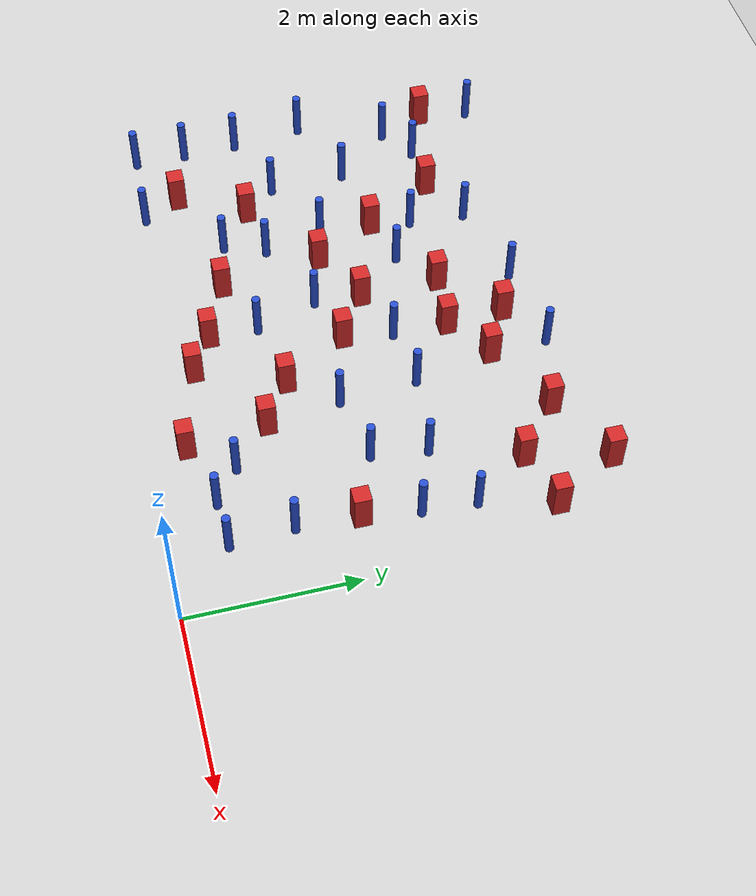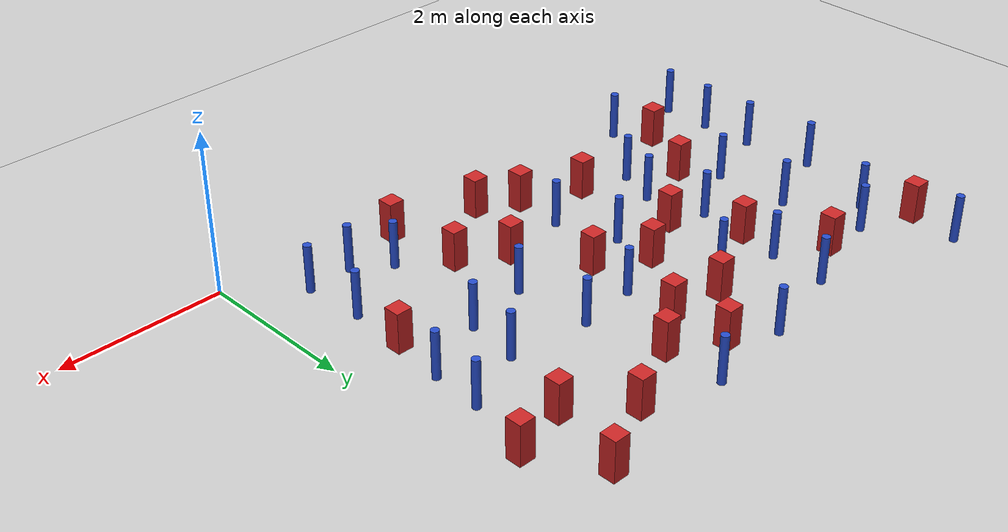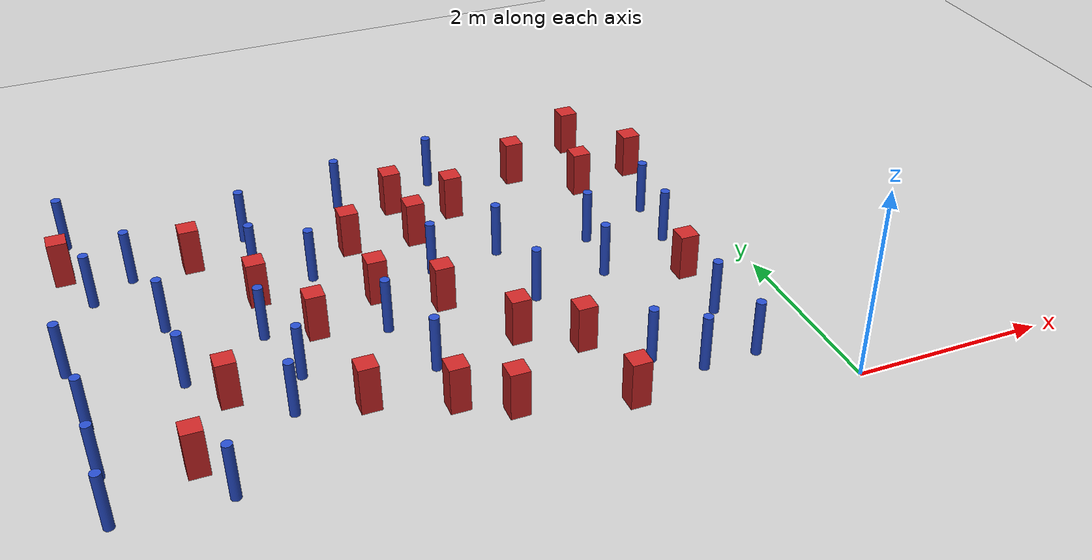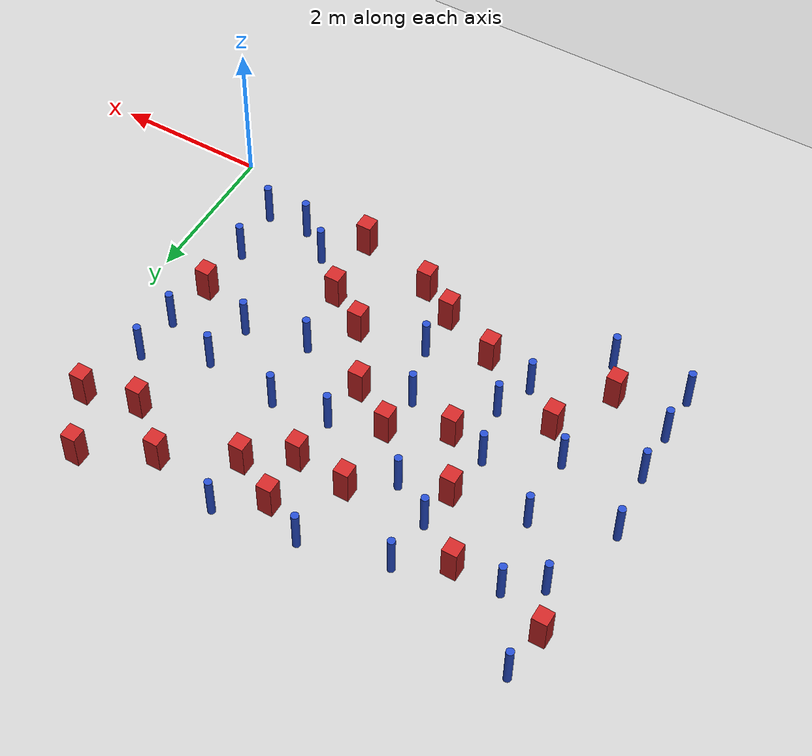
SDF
<sdf version="1.6">
 <world name="default">
  <model name="ground_plane">
   <static>1</static>
   <link name="link">
    <collision name="collision">
     <geometry><plane><normal>0 0 1</normal><size>100 100</size></plane></geometry>
     <surface><friction><ode><mu>100</mu><mu2>50</mu2></ode></friction></surface>
    </collision>
    <visual name="visual">
     <cast_shadows>0</cast_shadows>
     <geometry><plane><normal>0 0 1</normal><size>100 100</size></plane></geometry>
     <material>
      <ambient>1.0 1.0 1.0 1.0</ambient>
      <diffuse>0.8 0.8 0.8 1.0</diffuse>
      <specular>0.01 0.01 0.01 1.000000</specular>
     </material>
    </visual>
   </link>
  </model>
  <model name="square_post_obstacle4">
   <static>true</static>
   <pose>-2.11316547237 0.448848622311 8.22691968438e-08 7.2212513382e-06 -7.54495500217e-07 2.29674213826e-05</pose>
   <link name="link">
    <pose>0 0 0.25 0 -0 0</pose>
    <inertial>
     <mass>100</mass>
     <inertia>
      <ixx>0.166667</ixx>
      <ixy>0</ixy>
      <ixz>0</ixz>
      <iyy>0.166667</iyy>
      <iyz>0</iyz>
      <izz>0.166667</izz>
     </inertia>
    </inertial>
    <collision name="collision"><geometry><box><size>.2 .2 .5</size></box></geometry></collision>
    <visual name="visual">
     <geometry><box><size>.2 .2 .5</size></box></geometry>
     <material>
      <script><name>Gazebo/Red</name><uri>file://media/materials/scripts/gazebo.material</uri></script>
     </material>
    </visual>
   </link>
  </model>
  <model name="square_post_obstacle6">
   <static>true</static>
   <pose>-3.87069192573 3.87692242752 8.22691968438e-08 7.2212513382e-06 -7.54495500217e-07 2.29674213826e-05</pose>
   <link name="link">
    <pose>0 0 0.25 0 -0 0</pose>
    <inertial>
     <mass>100</mass>
     <inertia>
      <ixx>0.166667</ixx>
      <ixy>0</ixy>
      <ixz>0</ixz>
      <iyy>0.166667</iyy>
      <iyz>0</iyz>
      <izz>0.166667</izz>
     </inertia>
    </inertial>
    <collision name="collision"><geometry><box><size>.2 .2 .5</size></box></geometry></collision>
    <visual name="visual">
     <geometry><box><size>.2 .2 .5</size></box></geometry>
     <material>
      <script><name>Gazebo/Red</name><uri>file://media/materials/scripts/gazebo.material</uri></script>
     </material>
    </visual>
   </link>
  </model>
  <model name="square_post_obstacle10">
   <static>true</static>
   <pose>-0.852581200315 5.08488537747 8.22691968438e-08 7.2212513382e-06 -7.54495500217e-07 2.29674213826e-05</pose>
   <link name="link">
    <pose>0 0 0.25 0 -0 0</pose>
    <inertial>
     <mass>100</mass>
     <inertia>
      <ixx>0.166667</ixx>
      <ixy>0</ixy>
      <ixz>0</ixz>
      <iyy>0.166667</iyy>
      <iyz>0</iyz>
      <izz>0.166667</izz>
     </inertia>
    </inertial>
    <collision name="collision"><geometry><box><size>.2 .2 .5</size></box></geometry></collision>
    <visual name="visual">
     <geometry><box><size>.2 .2 .5</size></box></geometry>
     <material>
      <script><name>Gazebo/Red</name><uri>file://media/materials/scripts/gazebo.material</uri></script>
     </material>
    </visual>
   </link>
  </model>
  <model name="square_post_obstacle15">
   <static>true</static>
   <pose>-2.22045392741 1.4042794014 8.22691968438e-08 7.2212513382e-06 -7.54495500217e-07 2.29674213826e-05</pose>
   <link name="link">
    <pose>0 0 0.25 0 -0 0</pose>
    <inertial>
     <mass>100</mass>
     <inertia>
      <ixx>0.166667</ixx>
      <ixy>0</ixy>
      <ixz>0</ixz>
      <iyy>0.166667</iyy>
      <iyz>0</iyz>
      <izz>0.166667</izz>
     </inertia>
    </inertial>
    <collision name="collision"><geometry><box><size>.2 .2 .5</size></box></geometry></collision>
    <visual name="visual">
     <geometry><box><size>.2 .2 .5</size></box></geometry>
     <material>
      <script><name>Gazebo/Red</name><uri>file://media/materials/scripts/gazebo.material</uri></script>
     </material>
    </visual>
   </link>
  </model>
  <model name="square_post_obstacle16">
   <static>true</static>
   <pose>-2.76167531321 1.74624394198 8.22691968438e-08 7.2212513382e-06 -7.54495500217e-07 2.29674213826e-05</pose>
   <link name="link">
    <pose>0 0 0.25 0 -0 0</pose>
    <inertial>
     <mass>100</mass>
     <inertia>
      <ixx>0.166667</ixx>
      <ixy>0</ixy>
      <ixz>0</ixz>
      <iyy>0.166667</iyy>
      <iyz>0</iyz>
      <izz>0.166667</izz>
     </inertia>
    </inertial>
    <collision name="collision"><geometry><box><size>.2 .2 .5</size></box></geometry></collision>
    <visual name="visual">
     <geometry><box><size>.2 .2 .5</size></box></geometry>
     <material>
      <script><name>Gazebo/Red</name><uri>file://media/materials/scripts/gazebo.material</uri></script>
     </material>
    </visual>
   </link>
  </model>
  <model name="square_post_obstacle17">
   <static>true</static>
   <pose>-5.9862439751 1.03160733476 8.22691968438e-08 7.2212513382e-06 -7.54495500217e-07 2.29674213826e-05</pose>
   <link name="link">
    <pose>0 0 0.25 0 -0 0</pose>
    <inertial>
     <mass>100</mass>
     <inertia>
      <ixx>0.166667</ixx>
      <ixy>0</ixy>
      <ixz>0</ixz>
      <iyy>0.166667</iyy>
      <iyz>0</iyz>
      <izz>0.166667</izz>
     </inertia>
    </inertial>
    <collision name="collision"><geometry><box><size>.2 .2 .5</size></box></geometry></collision>
    <visual name="visual">
     <geometry><box><size>.2 .2 .5</size></box></geometry>
     <material>
      <script><name>Gazebo/Red</name><uri>file://media/materials/scripts/gazebo.material</uri></script>
     </material>
    </visual>
   </link>
  </model>
  <model name="pole_obstacle41">
   <static>true</static>
   <pose>-6.80397905321 1.93178878312 2.88873142074e-08 -9.90536689445e-09 4.60219948999e-07 -1.20965994956e-07</pose>
   <link name="link">
    <pose>0 0 0.3 0 -0 0</pose>
    <inertial>
     <mass>1</mass>
     <inertia><ixx>0.145833</ixx><ixy>0</ixy><ixz>0</ixz><iyy>0.145833</iyy><iyz>0</iyz><izz>0.125</izz></inertia>
    </inertial>
    <collision name="collision">
     <geometry><cylinder><radius>0.05</radius><length>.6</length></cylinder></geometry>
    </collision>
    <visual name="visual">
     <geometry><cylinder><radius>0.05</radius><length>.6</length></cylinder></geometry>
     <material>
      <script><name>Gazebo/Blue</name><uri>file://media/materials/scripts/gazebo.material</uri></script>
     </material>
    </visual>
   </link>
  </model>
  <model name="pole_obstacle43">
   <static>true</static>
   <pose>-2.35317651669 2.29466761932 2.88873142074e-08 -9.90536690232e-09 4.6021994898e-07 -1.20965994968e-07</pose>
   <link name="link">
    <pose>0 0 0.3 0 -0 0</pose>
    <inertial>
     <mass>1</mass>
     <inertia><ixx>0.145833</ixx><ixy>0</ixy><ixz>0</ixz><iyy>0.145833</iyy><iyz>0</iyz><izz>0.125</izz></inertia>
    </inertial>
    <collision name="collision">
     <geometry><cylinder><radius>0.05</radius><length>.6</length></cylinder></geometry>
    </collision>
    <visual name="visual">
     <geometry><cylinder><radius>0.05</radius><length>.6</length></cylinder></geometry>
     <material>
      <script><name>Gazebo/Blue</name><uri>file://media/materials/scripts/gazebo.material</uri></script>
     </material>
    </visual>
   </link>
  </model>
  <model name="pole_obstacle46">
   <static>true</static>
   <pose>-3.76597428438 4.78075780104 2.88873142074e-08 -9.90536689859e-09 4.60219948989e-07 -1.20965994961e-07</pose>
   <link name="link">
    <pose>0 0 0.3 0 -0 0</pose>
    <inertial>
     <mass>1</mass>
     <inertia><ixx>0.145833</ixx><ixy>0</ixy><ixz>0</ixz><iyy>0.145833</iyy><iyz>0</iyz><izz>0.125</izz></inertia>
    </inertial>
    <collision name="collision">
     <geometry><cylinder><radius>0.05</radius><length>.6</length></cylinder></geometry>
    </collision>
    <visual name="visual">
     <geometry><cylinder><radius>0.05</radius><length>.6</length></cylinder></geometry>
     <material>
      <script><name>Gazebo/Blue</name><uri>file://media/materials/scripts/gazebo.material</uri></script>
     </material>
    </visual>
   </link>
  </model>
  <model name="square_post_obstacle37">
   <static>true</static>
   <pose>-5.55271702895 1.84502381901 8.22691968438e-08 7.2212513382e-06 -7.54495500217e-07 2.29674213826e-05</pose>
   <link name="link">
    <pose>0 0 0.25 0 -0 0</pose>
    <inertial>
     <mass>100</mass>
     <inertia>
      <ixx>0.166667</ixx>
      <ixy>0</ixy>
      <ixz>0</ixz>
      <iyy>0.166667</iyy>
      <iyz>0</iyz>
      <izz>0.166667</izz>
     </inertia>
    </inertial>
    <collision name="collision"><geometry><box><size>.2 .2 .5</size></box></geometry></collision>
    <visual name="visual">
     <geometry><box><size>.2 .2 .5</size></box></geometry>
     <material>
      <script><name>Gazebo/Red</name><uri>file://media/materials/scripts/gazebo.material</uri></script>
     </material>
    </visual>
   </link>
  </model>
  <model name="pole_obstacle48">
   <static>true</static>
   <pose>-3.64993257593 1.59361665592 2.88873142074e-08 -9.90536689395e-09 4.60219949e-07 -1.20965994953e-07</pose>
   <link name="link">
    <pose>0 0 0.3 0 -0 0</pose>
    <inertial>
     <mass>1</mass>
     <inertia><ixx>0.145833</ixx><ixy>0</ixy><ixz>0</ixz><iyy>0.145833</iyy><iyz>0</iyz><izz>0.125</izz></inertia>
    </inertial>
    <collision name="collision">
     <geometry><cylinder><radius>0.05</radius><length>.6</length></cylinder></geometry>
    </collision>
    <visual name="visual">
     <geometry><cylinder><radius>0.05</radius><length>.6</length></cylinder></geometry>
     <material>
      <script><name>Gazebo/Blue</name><uri>file://media/materials/scripts/gazebo.material</uri></script>
     </material>
    </visual>
   </link>
  </model>
  <model name="pole_obstacle49">
   <static>true</static>
   <pose>-6.67984582859 5.06452650886 2.88873142074e-08 -9.90536690842e-09 4.60219948965e-07 -1.20965994976e-07</pose>
   <link name="link">
    <pose>0 0 0.3 0 -0 0</pose>
    <inertial>
     <mass>1</mass>
     <inertia><ixx>0.145833</ixx><ixy>0</ixy><ixz>0</ixz><iyy>0.145833</iyy><iyz>0</iyz><izz>0.125</izz></inertia>
    </inertial>
    <collision name="collision">
     <geometry><cylinder><radius>0.05</radius><length>.6</length></cylinder></geometry>
    </collision>
    <visual name="visual">
     <geometry><cylinder><radius>0.05</radius><length>.6</length></cylinder></geometry>
     <material>
      <script><name>Gazebo/Blue</name><uri>file://media/materials/scripts/gazebo.material</uri></script>
     </material>
    </visual>
   </link>
  </model>
  <model name="pole_obstacle55">
   <static>true</static>
   <pose>-0.789212763674 1.41778082368 2.88873142074e-08 -9.90536689855e-09 4.60219948989e-07 -1.20965994962e-07</pose>
   <link name="link">
    <pose>0 0 0.3 0 -0 0</pose>
    <inertial>
     <mass>1</mass>
     <inertia><ixx>0.145833</ixx><ixy>0</ixy><ixz>0</ixz><iyy>0.145833</iyy><iyz>0</iyz><izz>0.125</izz></inertia>
    </inertial>
    <collision name="collision">
     <geometry><cylinder><radius>0.05</radius><length>.6</length></cylinder></geometry>
    </collision>
    <visual name="visual">
     <geometry><cylinder><radius>0.05</radius><length>.6</length></cylinder></geometry>
     <material>
      <script><name>Gazebo/Blue</name><uri>file://media/materials/scripts/gazebo.material</uri></script>
     </material>
    </visual>
   </link>
  </model>
  <model name="square_post_obstacle42">
   <static>true</static>
   <pose>-3.64605832302 1.00050177751 8.22691968438e-08 7.2212513382e-06 -7.54495500217e-07 2.29674213826e-05</pose>
   <link name="link">
    <pose>0 0 0.25 0 -0 0</pose>
    <inertial>
     <mass>100</mass>
     <inertia>
      <ixx>0.166667</ixx>
      <ixy>0</ixy>
      <ixz>0</ixz>
      <iyy>0.166667</iyy>
      <iyz>0</iyz>
      <izz>0.166667</izz>
     </inertia>
    </inertial>
    <collision name="collision"><geometry><box><size>.2 .2 .5</size></box></geometry></collision>
    <visual name="visual">
     <geometry><box><size>.2 .2 .5</size></box></geometry>
     <material>
      <script><name>Gazebo/Red</name><uri>file://media/materials/scripts/gazebo.material</uri></script>
     </material>
    </visual>
   </link>
  </model>
  <model name="pole_obstacle57">
   <static>true</static>
   <pose>-5.04456803269 1.44808063659 2.88873142074e-08 -9.90536689445e-09 4.60219948999e-07 -1.20965994956e-07</pose>
   <link name="link">
    <pose>0 0 0.3 0 -0 0</pose>
    <inertial>
     <mass>1</mass>
     <inertia><ixx>0.145833</ixx><ixy>0</ixy><ixz>0</ixz><iyy>0.145833</iyy><iyz>0</iyz><izz>0.125</izz></inertia>
    </inertial>
    <collision name="collision">
     <geometry><cylinder><radius>0.05</radius><length>.6</length></cylinder></geometry>
    </collision>
    <visual name="visual">
     <geometry><cylinder><radius>0.05</radius><length>.6</length></cylinder></geometry>
     <material>
      <script><name>Gazebo/Blue</name><uri>file://media/materials/scripts/gazebo.material</uri></script>
     </material>
    </visual>
   </link>
  </model>
  <model name="pole_obstacle62">
   <static>true</static>
   <pose>-4.85865674585 1.94976239915 2.88873142074e-08 -9.90536689445e-09 4.60219948999e-07 -1.20965994956e-07</pose>
   <link name="link">
    <pose>0 0 0.3 0 -0 0</pose>
    <inertial>
     <mass>1</mass>
     <inertia><ixx>0.145833</ixx><ixy>0</ixy><ixz>0</ixz><iyy>0.145833</iyy><iyz>0</iyz><izz>0.125</izz></inertia>
    </inertial>
    <collision name="collision">
     <geometry><cylinder><radius>0.05</radius><length>.6</length></cylinder></geometry>
    </collision>
    <visual name="visual">
     <geometry><cylinder><radius>0.05</radius><length>.6</length></cylinder></geometry>
     <material>
      <script><name>Gazebo/Blue</name><uri>file://media/materials/scripts/gazebo.material</uri></script>
     </material>
    </visual>
   </link>
  </model>
  <model name="square_post_obstacle57">
   <static>true</static>
   <pose>-0.396404129741 4.30557157454 8.22691968438e-08 7.22125133819e-06 -7.54495500217e-07 2.29674213826e-05</pose>
   <link name="link">
    <pose>0 0 0.25 0 -0 0</pose>
    <inertial>
     <mass>100</mass>
     <inertia>
      <ixx>0.166667</ixx>
      <ixy>0</ixy>
      <ixz>0</ixz>
      <iyy>0.166667</iyy>
      <iyz>0</iyz>
      <izz>0.166667</izz>
     </inertia>
    </inertial>
    <collision name="collision"><geometry><box><size>.2 .2 .5</size></box></geometry></collision>
    <visual name="visual">
     <geometry><box><size>.2 .2 .5</size></box></geometry>
     <material>
      <script><name>Gazebo/Red</name><uri>file://media/materials/scripts/gazebo.material</uri></script>
     </material>
    </visual>
   </link>
  </model>
  <model name="pole_obstacle69">
   <static>true</static>
   <pose>-5.92771068466 3.17629808657 2.88873142074e-08 -9.90536690245e-09 4.6021994898e-07 -1.20965994966e-07</pose>
   <link name="link">
    <pose>0 0 0.3 0 -0 0</pose>
    <inertial>
     <mass>1</mass>
     <inertia><ixx>0.145833</ixx><ixy>0</ixy><ixz>0</ixz><iyy>0.145833</iyy><iyz>0</iyz><izz>0.125</izz></inertia>
    </inertial>
    <collision name="collision">
     <geometry><cylinder><radius>0.05</radius><length>.6</length></cylinder></geometry>
    </collision>
    <visual name="visual">
     <geometry><cylinder><radius>0.05</radius><length>.6</length></cylinder></geometry>
     <material>
      <script><name>Gazebo/Blue</name><uri>file://media/materials/scripts/gazebo.material</uri></script>
     </material>
    </visual>
   </link>
  </model>
  <model name="square_post_obstacle61">
   <static>true</static>
   <pose>-2.61877729427 4.18500369244 8.22691968438e-08 7.2212513382e-06 -7.54495500217e-07 2.29674213826e-05</pose>
   <link name="link">
    <pose>0 0 0.25 0 -0 0</pose>
    <inertial>
     <mass>100</mass>
     <inertia>
      <ixx>0.166667</ixx>
      <ixy>0</ixy>
      <ixz>0</ixz>
      <iyy>0.166667</iyy>
      <iyz>0</iyz>
      <izz>0.166667</izz>
     </inertia>
    </inertial>
    <collision name="collision"><geometry><box><size>.2 .2 .5</size></box></geometry></collision>
    <visual name="visual">
     <geometry><box><size>.2 .2 .5</size></box></geometry>
     <material>
      <script><name>Gazebo/Red</name><uri>file://media/materials/scripts/gazebo.material</uri></script>
     </material>
    </visual>
   </link>
  </model>
  <model name="pole_obstacle72">
   <static>true</static>
   <pose>-6.53164987024 3.87169850546 2.88873142074e-08 -9.90536690245e-09 4.6021994898e-07 -1.20965994966e-07</pose>
   <link name="link">
    <pose>0 0 0.3 0 -0 0</pose>
    <inertial>
     <mass>1</mass>
     <inertia><ixx>0.145833</ixx><ixy>0</ixy><ixz>0</ixz><iyy>0.145833</iyy><iyz>0</iyz><izz>0.125</izz></inertia>
    </inertial>
    <collision name="collision">
     <geometry><cylinder><radius>0.05</radius><length>.6</length></cylinder></geometry>
    </collision>
    <visual name="visual">
     <geometry><cylinder><radius>0.05</radius><length>.6</length></cylinder></geometry>
     <material>
      <script><name>Gazebo/Blue</name><uri>file://media/materials/scripts/gazebo.material</uri></script>
     </material>
    </visual>
   </link>
  </model>
  <model name="pole_obstacle76">
   <static>true</static>
   <pose>-0.629831373037 3.4519672268 2.88873142074e-08 -9.90536689636e-09 4.60219948994e-07 -1.20965994958e-07</pose>
   <link name="link">
    <pose>0 0 0.3 0 -0 0</pose>
    <inertial>
     <mass>1</mass>
     <inertia><ixx>0.145833</ixx><ixy>0</ixy><ixz>0</ixz><iyy>0.145833</iyy><iyz>0</iyz><izz>0.125</izz></inertia>
    </inertial>
    <collision name="collision">
     <geometry><cylinder><radius>0.05</radius><length>.6</length></cylinder></geometry>
    </collision>
    <visual name="visual">
     <geometry><cylinder><radius>0.05</radius><length>.6</length></cylinder></geometry>
     <material>
      <script><name>Gazebo/Blue</name><uri>file://media/materials/scripts/gazebo.material</uri></script>
     </material>
    </visual>
   </link>
  </model>
  <model name="pole_obstacle77">
   <static>true</static>
   <pose>-2.43531932804 3.23425886564 2.88873142074e-08 -9.90536690232e-09 4.6021994898e-07 -1.20965994968e-07</pose>
   <link name="link">
    <pose>0 0 0.3 0 -0 0</pose>
    <inertial>
     <mass>1</mass>
     <inertia><ixx>0.145833</ixx><ixy>0</ixy><ixz>0</ixz><iyy>0.145833</iyy><iyz>0</iyz><izz>0.125</izz></inertia>
    </inertial>
    <collision name="collision">
     <geometry><cylinder><radius>0.05</radius><length>.6</length></cylinder></geometry>
    </collision>
    <visual name="visual">
     <geometry><cylinder><radius>0.05</radius><length>.6</length></cylinder></geometry>
     <material>
      <script><name>Gazebo/Blue</name><uri>file://media/materials/scripts/gazebo.material</uri></script>
     </material>
    </visual>
   </link>
  </model>
  <model name="pole_obstacle79">
   <static>true</static>
   <pose>-1.52706227829 2.44863268867 2.88873142074e-08 -9.90536689791e-09 4.6021994899e-07 -1.20965994959e-07</pose>
   <link name="link">
    <pose>0 0 0.3 0 -0 0</pose>
    <inertial>
     <mass>1</mass>
     <inertia><ixx>0.145833</ixx><ixy>0</ixy><ixz>0</ixz><iyy>0.145833</iyy><iyz>0</iyz><izz>0.125</izz></inertia>
    </inertial>
    <collision name="collision">
     <geometry><cylinder><radius>0.05</radius><length>.6</length></cylinder></geometry>
    </collision>
    <visual name="visual">
     <geometry><cylinder><radius>0.05</radius><length>.6</length></cylinder></geometry>
     <material>
      <script><name>Gazebo/Blue</name><uri>file://media/materials/scripts/gazebo.material</uri></script>
     </material>
    </visual>
   </link>
  </model>
  <model name="square_post_obstacle71">
   <static>true</static>
   <pose>-1.09750510211 4.12638105105 8.22691968438e-08 7.2212513382e-06 -7.54495500217e-07 2.29674213826e-05</pose>
   <link name="link">
    <pose>0 0 0.25 0 -0 0</pose>
    <inertial>
     <mass>100</mass>
     <inertia>
      <ixx>0.166667</ixx>
      <ixy>0</ixy>
      <ixz>0</ixz>
      <iyy>0.166667</iyy>
      <iyz>0</iyz>
      <izz>0.166667</izz>
     </inertia>
    </inertial>
    <collision name="collision"><geometry><box><size>.2 .2 .5</size></box></geometry></collision>
    <visual name="visual">
     <geometry><box><size>.2 .2 .5</size></box></geometry>
     <material>
      <script><name>Gazebo/Red</name><uri>file://media/materials/scripts/gazebo.material</uri></script>
     </material>
    </visual>
   </link>
  </model>
  <model name="pole_obstacle84">
   <static>true</static>
   <pose>-4.3691163398 3.49602327641 2.88873142074e-08 -9.90536690245e-09 4.6021994898e-07 -1.20965994966e-07</pose>
   <link name="link">
    <pose>0 0 0.3 0 -0 0</pose>
    <inertial>
     <mass>1</mass>
     <inertia><ixx>0.145833</ixx><ixy>0</ixy><ixz>0</ixz><iyy>0.145833</iyy><iyz>0</iyz><izz>0.125</izz></inertia>
    </inertial>
    <collision name="collision">
     <geometry><cylinder><radius>0.05</radius><length>.6</length></cylinder></geometry>
    </collision>
    <visual name="visual">
     <geometry><cylinder><radius>0.05</radius><length>.6</length></cylinder></geometry>
     <material>
      <script><name>Gazebo/Blue</name><uri>file://media/materials/scripts/gazebo.material</uri></script>
     </material>
    </visual>
   </link>
  </model>
  <model name="pole_obstacle86">
   <static>true</static>
   <pose>-1.71890436945 0.944685825145 2.88873142074e-08 -9.90536689692e-09 4.60219948993e-07 -1.20965994958e-07</pose>
   <link name="link">
    <pose>0 0 0.3 0 -0 0</pose>
    <inertial>
     <mass>1</mass>
     <inertia><ixx>0.145833</ixx><ixy>0</ixy><ixz>0</ixz><iyy>0.145833</iyy><iyz>0</iyz><izz>0.125</izz></inertia>
    </inertial>
    <collision name="collision">
     <geometry><cylinder><radius>0.05</radius><length>.6</length></cylinder></geometry>
    </collision>
    <visual name="visual">
     <geometry><cylinder><radius>0.05</radius><length>.6</length></cylinder></geometry>
     <material>
      <script><name>Gazebo/Blue</name><uri>file://media/materials/scripts/gazebo.material</uri></script>
     </material>
    </visual>
   </link>
  </model>
  <model name="pole_obstacle94">
   <static>true</static>
   <pose>-5.05500899514 2.68428086867 2.88873142074e-08 -9.90536690245e-09 4.6021994898e-07 -1.20965994966e-07</pose>
   <link name="link">
    <pose>0 0 0.3 0 -0 0</pose>
    <inertial>
     <mass>1</mass>
     <inertia><ixx>0.145833</ixx><ixy>0</ixy><ixz>0</ixz><iyy>0.145833</iyy><iyz>0</iyz><izz>0.125</izz></inertia>
    </inertial>
    <collision name="collision">
     <geometry><cylinder><radius>0.05</radius><length>.6</length></cylinder></geometry>
    </collision>
    <visual name="visual">
     <geometry><cylinder><radius>0.05</radius><length>.6</length></cylinder></geometry>
     <material>
      <script><name>Gazebo/Blue</name><uri>file://media/materials/scripts/gazebo.material</uri></script>
     </material>
    </visual>
   </link>
  </model>
  <model name="pole_obstacle95">
   <static>true</static>
   <pose>-4.91013046387 3.81869325288 2.88873142074e-08 -9.90536690245e-09 4.6021994898e-07 -1.20965994966e-07</pose>
   <link name="link">
    <pose>0 0 0.3 0 -0 0</pose>
    <inertial>
     <mass>1</mass>
     <inertia><ixx>0.145833</ixx><ixy>0</ixy><ixz>0</ixz><iyy>0.145833</iyy><iyz>0</iyz><izz>0.125</izz></inertia>
    </inertial>
    <collision name="collision">
     <geometry><cylinder><radius>0.05</radius><length>.6</length></cylinder></geometry>
    </collision>
    <visual name="visual">
     <geometry><cylinder><radius>0.05</radius><length>.6</length></cylinder></geometry>
     <material>
      <script><name>Gazebo/Blue</name><uri>file://media/materials/scripts/gazebo.material</uri></script>
     </material>
    </visual>
   </link>
  </model>
  <model name="square_post_obstacle90">
   <static>true</static>
   <pose>-3.17197000261 0.72968351839 8.22691968438e-08 7.2212513382e-06 -7.54495500217e-07 2.29674213826e-05</pose>
   <link name="link">
    <pose>0 0 0.25 0 -0 0</pose>
    <inertial>
     <mass>100</mass>
     <inertia>
      <ixx>0.166667</ixx>
      <ixy>0</ixy>
      <ixz>0</ixz>
      <iyy>0.166667</iyy>
      <iyz>0</iyz>
      <izz>0.166667</izz>
     </inertia>
    </inertial>
    <collision name="collision"><geometry><box><size>.2 .2 .5</size></box></geometry></collision>
    <visual name="visual">
     <geometry><box><size>.2 .2 .5</size></box></geometry>
     <material>
      <script><name>Gazebo/Red</name><uri>file://media/materials/scripts/gazebo.material</uri></script>
     </material>
    </visual>
   </link>
  </model>
  <model name="square_post_obstacle93">
   <static>true</static>
   <pose>-3.26152470604 2.54660718955 8.22691968438e-08 7.2212513382e-06 -7.54495500217e-07 2.29674213826e-05</pose>
   <link name="link">
    <pose>0 0 0.25 0 -0 0</pose>
    <inertial>
     <mass>100</mass>
     <inertia>
      <ixx>0.166667</ixx>
      <ixy>0</ixy>
      <ixz>0</ixz>
      <iyy>0.166667</iyy>
      <iyz>0</iyz>
      <izz>0.166667</izz>
     </inertia>
    </inertial>
    <collision name="collision"><geometry><box><size>.2 .2 .5</size></box></geometry></collision>
    <visual name="visual">
     <geometry><box><size>.2 .2 .5</size></box></geometry>
     <material>
      <script><name>Gazebo/Red</name><uri>file://media/materials/scripts/gazebo.material</uri></script>
     </material>
    </visual>
   </link>
  </model>
  <model name="pole_obstacle102">
   <static>true</static>
   <pose>-6.77912852647 0.628575630393 2.88873142074e-08 -9.90536689837e-09 4.60219948989e-07 -1.2096599496e-07</pose>
   <link name="link">
    <pose>0 0 0.3 0 -0 0</pose>
    <inertial>
     <mass>1</mass>
     <inertia><ixx>0.145833</ixx><ixy>0</ixy><ixz>0</ixz><iyy>0.145833</iyy><iyz>0</iyz><izz>0.125</izz></inertia>
    </inertial>
    <collision name="collision">
     <geometry><cylinder><radius>0.05</radius><length>.6</length></cylinder></geometry>
    </collision>
    <visual name="visual">
     <geometry><cylinder><radius>0.05</radius><length>.6</length></cylinder></geometry>
     <material>
      <script><name>Gazebo/Blue</name><uri>file://media/materials/scripts/gazebo.material</uri></script>
     </material>
    </visual>
   </link>
  </model>
  <model name="square_post_obstacle101">
   <static>true</static>
   <pose>-4.56147808963 2.55226993955 8.22691968438e-08 7.2212513382e-06 -7.54495500217e-07 2.29674213826e-05</pose>
   <link name="link">
    <pose>0 0 0.25 0 -0 0</pose>
    <inertial>
     <mass>100</mass>
     <inertia>
      <ixx>0.166667</ixx>
      <ixy>0</ixy>
      <ixz>0</ixz>
      <iyy>0.166667</iyy>
      <iyz>0</iyz>
      <izz>0.166667</izz>
     </inertia>
    </inertial>
    <collision name="collision"><geometry><box><size>.2 .2 .5</size></box></geometry></collision>
    <visual name="visual">
     <geometry><box><size>.2 .2 .5</size></box></geometry>
     <material>
      <script><name>Gazebo/Red</name><uri>file://media/materials/scripts/gazebo.material</uri></script>
     </material>
    </visual>
   </link>
  </model>
  <model name="square_post_obstacle107">
   <static>true</static>
   <pose>-0.754436226012 2.14910206681 8.22691968438e-08 7.2212513382e-06 -7.54495500217e-07 2.29674213826e-05</pose>
   <link name="link">
    <pose>0 0 0.25 0 -0 0</pose>
    <inertial>
     <mass>100</mass>
     <inertia>
      <ixx>0.166667</ixx>
      <ixy>0</ixy>
      <ixz>0</ixz>
      <iyy>0.166667</iyy>
      <iyz>0</iyz>
      <izz>0.166667</izz>
     </inertia>
    </inertial>
    <collision name="collision"><geometry><box><size>.2 .2 .5</size></box></geometry></collision>
    <visual name="visual">
     <geometry><box><size>.2 .2 .5</size></box></geometry>
     <material>
      <script><name>Gazebo/Red</name><uri>file://media/materials/scripts/gazebo.material</uri></script>
     </material>
    </visual>
   </link>
  </model>
  <model name="pole_obstacle127">
   <static>true</static>
   <pose>-6.90710730092 2.80619772183 2.88873142074e-08 -9.90536690245e-09 4.6021994898e-07 -1.20965994966e-07</pose>
   <link name="link">
    <pose>0 0 0.3 0 -0 0</pose>
    <inertial>
     <mass>1</mass>
     <inertia><ixx>0.145833</ixx><ixy>0</ixy><ixz>0</ixz><iyy>0.145833</iyy><iyz>0</iyz><izz>0.125</izz></inertia>
    </inertial>
    <collision name="collision">
     <geometry><cylinder><radius>0.05</radius><length>.6</length></cylinder></geometry>
    </collision>
    <visual name="visual">
     <geometry><cylinder><radius>0.05</radius><length>.6</length></cylinder></geometry>
     <material>
      <script><name>Gazebo/Blue</name><uri>file://media/materials/scripts/gazebo.material</uri></script>
     </material>
    </visual>
   </link>
  </model>
  <model name="square_post_obstacle133">
   <static>true</static>
   <pose>-5.4833330932 4.17495990944 8.22691968438e-08 7.2212513382e-06 -7.54495500217e-07 2.29674213826e-05</pose>
   <link name="link">
    <pose>0 0 0.25 0 -0 0</pose>
    <inertial>
     <mass>100</mass>
     <inertia>
      <ixx>0.166667</ixx>
      <ixy>0</ixy>
      <ixz>0</ixz>
      <iyy>0.166667</iyy>
      <iyz>0</iyz>
      <izz>0.166667</izz>
     </inertia>
    </inertial>
    <collision name="collision"><geometry><box><size>.2 .2 .5</size></box></geometry></collision>
    <visual name="visual">
     <geometry><box><size>.2 .2 .5</size></box></geometry>
     <material>
      <script><name>Gazebo/Red</name><uri>file://media/materials/scripts/gazebo.material</uri></script>
     </material>
    </visual>
   </link>
  </model>
  <model name="pole_obstacle137">
   <static>true</static>
   <pose>-6.78335086824 1.25744113472 2.88873142074e-08 -9.90536689445e-09 4.60219948999e-07 -1.20965994956e-07</pose>
   <link name="link">
    <pose>0 0 0.3 0 -0 0</pose>
    <inertial>
     <mass>1</mass>
     <inertia><ixx>0.145833</ixx><ixy>0</ixy><ixz>0</ixz><iyy>0.145833</iyy><iyz>0</iyz><izz>0.125</izz></inertia>
    </inertial>
    <collision name="collision">
     <geometry><cylinder><radius>0.05</radius><length>.6</length></cylinder></geometry>
    </collision>
    <visual name="visual">
     <geometry><cylinder><radius>0.05</radius><length>.6</length></cylinder></geometry>
     <material>
      <script><name>Gazebo/Blue</name><uri>file://media/materials/scripts/gazebo.material</uri></script>
     </material>
    </visual>
   </link>
  </model>
  <model name="pole_obstacle139">
   <static>true</static>
   <pose>-5.89101662996 2.24009078841 2.88873142074e-08 -9.90536690245e-09 4.6021994898e-07 -1.20965994966e-07</pose>
   <link name="link">
    <pose>0 0 0.3 0 -0 0</pose>
    <inertial>
     <mass>1</mass>
     <inertia><ixx>0.145833</ixx><ixy>0</ixy><ixz>0</ixz><iyy>0.145833</iyy><iyz>0</iyz><izz>0.125</izz></inertia>
    </inertial>
    <collision name="collision">
     <geometry><cylinder><radius>0.05</radius><length>.6</length></cylinder></geometry>
    </collision>
    <visual name="visual">
     <geometry><cylinder><radius>0.05</radius><length>.6</length></cylinder></geometry>
     <material>
      <script><name>Gazebo/Blue</name><uri>file://media/materials/scripts/gazebo.material</uri></script>
     </material>
    </visual>
   </link>
  </model>
  <model name="pole_obstacle150">
   <static>true</static>
   <pose>-0.666445163111 2.81714061153 2.88873142074e-08 -9.90536689636e-09 4.60219948994e-07 -1.20965994958e-07</pose>
   <link name="link">
    <pose>0 0 0.3 0 -0 0</pose>
    <inertial>
     <mass>1</mass>
     <inertia><ixx>0.145833</ixx><ixy>0</ixy><ixz>0</ixz><iyy>0.145833</iyy><iyz>0</iyz><izz>0.125</izz></inertia>
    </inertial>
    <collision name="collision">
     <geometry><cylinder><radius>0.05</radius><length>.6</length></cylinder></geometry>
    </collision>
    <visual name="visual">
     <geometry><cylinder><radius>0.05</radius><length>.6</length></cylinder></geometry>
     <material>
      <script><name>Gazebo/Blue</name><uri>file://media/materials/scripts/gazebo.material</uri></script>
     </material>
    </visual>
   </link>
  </model>
  <model name="pole_obstacle159">
   <static>true</static>
   <pose>-5.75043819356 0.580262178754 2.88873142074e-08 -9.90536689837e-09 4.60219948989e-07 -1.2096599496e-07</pose>
   <link name="link">
    <pose>0 0 0.3 0 -0 0</pose>
    <inertial>
     <mass>1</mass>
     <inertia><ixx>0.145833</ixx><ixy>0</ixy><ixz>0</ixz><iyy>0.145833</iyy><iyz>0</iyz><izz>0.125</izz></inertia>
    </inertial>
    <collision name="collision">
     <geometry><cylinder><radius>0.05</radius><length>.6</length></cylinder></geometry>
    </collision>
    <visual name="visual">
     <geometry><cylinder><radius>0.05</radius><length>.6</length></cylinder></geometry>
     <material>
      <script><name>Gazebo/Blue</name><uri>file://media/materials/scripts/gazebo.material</uri></script>
     </material>
    </visual>
   </link>
  </model>
  <model name="pole_obstacle162">
   <static>true</static>
   <pose>-3.89860456954 2.34860798876 2.88873142074e-08 -9.90536690232e-09 4.6021994898e-07 -1.20965994968e-07</pose>
   <link name="link">
    <pose>0 0 0.3 0 -0 0</pose>
    <inertial>
     <mass>1</mass>
     <inertia><ixx>0.145833</ixx><ixy>0</ixy><ixz>0</ixz><iyy>0.145833</iyy><iyz>0</iyz><izz>0.125</izz></inertia>
    </inertial>
    <collision name="collision">
     <geometry><cylinder><radius>0.05</radius><length>.6</length></cylinder></geometry>
    </collision>
    <visual name="visual">
     <geometry><cylinder><radius>0.05</radius><length>.6</length></cylinder></geometry>
     <material>
      <script><name>Gazebo/Blue</name><uri>file://media/materials/scripts/gazebo.material</uri></script>
     </material>
    </visual>
   </link>
  </model>
  <model name="pole_obstacle169">
   <static>true</static>
   <pose>-1.30712963753 0.646970192734 2.88873142074e-08 -9.90536689692e-09 4.60219948993e-07 -1.20965994958e-07</pose>
   <link name="link">
    <pose>0 0 0.3 0 -0 0</pose>
    <inertial>
     <mass>1</mass>
     <inertia><ixx>0.145833</ixx><ixy>0</ixy><ixz>0</ixz><iyy>0.145833</iyy><iyz>0</iyz><izz>0.125</izz></inertia>
    </inertial>
    <collision name="collision">
     <geometry><cylinder><radius>0.05</radius><length>.6</length></cylinder></geometry>
    </collision>
    <visual name="visual">
     <geometry><cylinder><radius>0.05</radius><length>.6</length></cylinder></geometry>
     <material>
      <script><name>Gazebo/Blue</name><uri>file://media/materials/scripts/gazebo.material</uri></script>
     </material>
    </visual>
   </link>
  </model>
  <model name="square_post_obstacle168">
   <static>true</static>
   <pose>-3.1675738383 3.80590737227 8.22691968438e-08 7.2212513382e-06 -7.54495500217e-07 2.29674213826e-05</pose>
   <link name="link">
    <pose>0 0 0.25 0 -0 0</pose>
    <inertial>
     <mass>100</mass>
     <inertia>
      <ixx>0.166667</ixx>
      <ixy>0</ixy>
      <ixz>0</ixz>
      <iyy>0.166667</iyy>
      <iyz>0</iyz>
      <izz>0.166667</izz>
     </inertia>
    </inertial>
    <collision name="collision"><geometry><box><size>.2 .2 .5</size></box></geometry></collision>
    <visual name="visual">
     <geometry><box><size>.2 .2 .5</size></box></geometry>
     <material>
      <script><name>Gazebo/Red</name><uri>file://media/materials/scripts/gazebo.material</uri></script>
     </material>
    </visual>
   </link>
  </model>
  <model name="pole_obstacle172">
   <static>true</static>
   <pose>-2.66479623348 4.90120539821 2.88873142074e-08 -9.90536689859e-09 4.60219948989e-07 -1.20965994961e-07</pose>
   <link name="link">
    <pose>0 0 0.3 0 -0 0</pose>
    <inertial>
     <mass>1</mass>
     <inertia><ixx>0.145833</ixx><ixy>0</ixy><ixz>0</ixz><iyy>0.145833</iyy><iyz>0</iyz><izz>0.125</izz></inertia>
    </inertial>
    <collision name="collision">
     <geometry><cylinder><radius>0.05</radius><length>.6</length></cylinder></geometry>
    </collision>
    <visual name="visual">
     <geometry><cylinder><radius>0.05</radius><length>.6</length></cylinder></geometry>
     <material>
      <script><name>Gazebo/Blue</name><uri>file://media/materials/scripts/gazebo.material</uri></script>
     </material>
    </visual>
   </link>
  </model>
  <model name="square_post_obstacle176">
   <static>true</static>
   <pose>-1.72174701975 4.64238074547 8.22691968438e-08 7.2212513382e-06 -7.54495500217e-07 2.29674213826e-05</pose>
   <link name="link">
    <pose>0 0 0.25 0 -0 0</pose>
    <inertial>
     <mass>100</mass>
     <inertia>
      <ixx>0.166667</ixx>
      <ixy>0</ixy>
      <ixz>0</ixz>
      <iyy>0.166667</iyy>
      <iyz>0</iyz>
      <izz>0.166667</izz>
     </inertia>
    </inertial>
    <collision name="collision"><geometry><box><size>.2 .2 .5</size></box></geometry></collision>
    <visual name="visual">
     <geometry><box><size>.2 .2 .5</size></box></geometry>
     <material>
      <script><name>Gazebo/Red</name><uri>file://media/materials/scripts/gazebo.material</uri></script>
     </material>
    </visual>
   </link>
  </model>
  <model name="square_post_obstacle179">
   <static>true</static>
   <pose>-6.75946642077 4.43551575098 8.22691968438e-08 7.2212513382e-06 -7.54495500217e-07 2.29674213826e-05</pose>
   <link name="link">
    <pose>0 0 0.25 0 -0 0</pose>
    <inertial>
     <mass>100</mass>
     <inertia>
      <ixx>0.166667</ixx>
      <ixy>0</ixy>
      <ixz>0</ixz>
      <iyy>0.166667</iyy>
      <iyz>0</iyz>
      <izz>0.166667</izz>
     </inertia>
    </inertial>
    <collision name="collision"><geometry><box><size>.2 .2 .5</size></box></geometry></collision>
    <visual name="visual">
     <geometry><box><size>.2 .2 .5</size></box></geometry>
     <material>
      <script><name>Gazebo/Red</name><uri>file://media/materials/scripts/gazebo.material</uri></script>
     </material>
    </visual>
   </link>
  </model>
  <model name="square_post_obstacle186">
   <static>true</static>
   <pose>-3.21890814562 4.51230105603 8.22691968438e-08 7.2212513382e-06 -7.54495500217e-07 2.29674213826e-05</pose>
   <link name="link">
    <pose>0 0 0.25 0 -0 0</pose>
    <inertial>
     <mass>100</mass>
     <inertia>
      <ixx>0.166667</ixx>
      <ixy>0</ixy>
      <ixz>0</ixz>
      <iyy>0.166667</iyy>
      <iyz>0</iyz>
      <izz>0.166667</izz>
     </inertia>
    </inertial>
    <collision name="collision"><geometry><box><size>.2 .2 .5</size></box></geometry></collision>
    <visual name="visual">
     <geometry><box><size>.2 .2 .5</size></box></geometry>
     <material>
      <script><name>Gazebo/Red</name><uri>file://media/materials/scripts/gazebo.material</uri></script>
     </material>
    </visual>
   </link>
  </model>
  <model name="square_post_obstacle192">
   <static>true</static>
   <pose>-4.39264201787 1.30324317932 8.22691968438e-08 7.2212513382e-06 -7.54495500217e-07 2.29674213826e-05</pose>
   <link name="link">
    <pose>0 0 0.25 0 -0 0</pose>
    <inertial>
     <mass>100</mass>
     <inertia>
      <ixx>0.166667</ixx>
      <ixy>0</ixy>
      <ixz>0</ixz>
      <iyy>0.166667</iyy>
      <iyz>0</iyz>
      <izz>0.166667</izz>
     </inertia>
    </inertial>
    <collision name="collision"><geometry><box><size>.2 .2 .5</size></box></geometry></collision>
    <visual name="visual">
     <geometry><box><size>.2 .2 .5</size></box></geometry>
     <material>
      <script><name>Gazebo/Red</name><uri>file://media/materials/scripts/gazebo.material</uri></script>
     </material>
    </visual>
   </link>
  </model>
  <model name="pole_obstacle187">
   <static>true</static>
   <pose>-4.87445737221 4.51140192555 2.88873142074e-08 -9.90536690842e-09 4.60219948965e-07 -1.20965994976e-07</pose>
   <link name="link">
    <pose>0 0 0.3 0 -0 0</pose>
    <inertial>
     <mass>1</mass>
     <inertia><ixx>0.145833</ixx><ixy>0</ixy><ixz>0</ixz><iyy>0.145833</iyy><iyz>0</iyz><izz>0.125</izz></inertia>
    </inertial>
    <collision name="collision">
     <geometry><cylinder><radius>0.05</radius><length>.6</length></cylinder></geometry>
    </collision>
    <visual name="visual">
     <geometry><cylinder><radius>0.05</radius><length>.6</length></cylinder></geometry>
     <material>
      <script><name>Gazebo/Blue</name><uri>file://media/materials/scripts/gazebo.material</uri></script>
     </material>
    </visual>
   </link>
  </model>
  <model name="square_post_obstacle193">
   <static>true</static>
   <pose>-4.97428051413 3.31390387579 8.22691968438e-08 7.2212513382e-06 -7.54495500217e-07 2.29674213826e-05</pose>
   <link name="link">
    <pose>0 0 0.25 0 -0 0</pose>
    <inertial>
     <mass>100</mass>
     <inertia>
      <ixx>0.166667</ixx>
      <ixy>0</ixy>
      <ixz>0</ixz>
      <iyy>0.166667</iyy>
      <iyz>0</iyz>
      <izz>0.166667</izz>
     </inertia>
    </inertial>
    <collision name="collision"><geometry><box><size>.2 .2 .5</size></box></geometry></collision>
    <visual name="visual">
     <geometry><box><size>.2 .2 .5</size></box></geometry>
     <material>
      <script><name>Gazebo/Red</name><uri>file://media/materials/scripts/gazebo.material</uri></script>
     </material>
    </visual>
   </link>
  </model>
  <model name="pole_obstacle195">
   <static>true</static>
   <pose>-3.1835657719 3.14968554917 2.88873142074e-08 -9.90536690232e-09 4.6021994898e-07 -1.20965994968e-07</pose>
   <link name="link">
    <pose>0 0 0.3 0 -0 0</pose>
    <inertial>
     <mass>1</mass>
     <inertia><ixx>0.145833</ixx><ixy>0</ixy><ixz>0</ixz><iyy>0.145833</iyy><iyz>0</iyz><izz>0.125</izz></inertia>
    </inertial>
    <collision name="collision">
     <geometry><cylinder><radius>0.05</radius><length>.6</length></cylinder></geometry>
    </collision>
    <visual name="visual">
     <geometry><cylinder><radius>0.05</radius><length>.6</length></cylinder></geometry>
     <material>
      <script><name>Gazebo/Blue</name><uri>file://media/materials/scripts/gazebo.material</uri></script>
     </material>
    </visual>
   </link>
  </model>
  <model name="pole_obstacle205">
   <static>true</static>
   <pose>-6.10737781368 4.1659218593 2.88873142074e-08 -9.90536690842e-09 4.60219948965e-07 -1.20965994976e-07</pose>
   <link name="link">
    <pose>0 0 0.3 0 -0 0</pose>
    <inertial>
     <mass>1</mass>
     <inertia><ixx>0.145833</ixx><ixy>0</ixy><ixz>0</ixz><iyy>0.145833</iyy><iyz>0</iyz><izz>0.125</izz></inertia>
    </inertial>
    <collision name="collision">
     <geometry><cylinder><radius>0.05</radius><length>.6</length></cylinder></geometry>
    </collision>
    <visual name="visual">
     <geometry><cylinder><radius>0.05</radius><length>.6</length></cylinder></geometry>
     <material>
      <script><name>Gazebo/Blue</name><uri>file://media/materials/scripts/gazebo.material</uri></script>
     </material>
    </visual>
   </link>
  </model>
  <model name="square_post_obstacle210">
   <static>true</static>
   <pose>-3.84871285165 2.9098697745 8.22691968438e-08 7.2212513382e-06 -7.54495500217e-07 2.29674213826e-05</pose>
   <link name="link">
    <pose>0 0 0.25 0 -0 0</pose>
    <inertial>
     <mass>100</mass>
     <inertia>
      <ixx>0.166667</ixx>
      <ixy>0</ixy>
      <ixz>0</ixz>
      <iyy>0.166667</iyy>
      <iyz>0</iyz>
      <izz>0.166667</izz>
     </inertia>
    </inertial>
    <collision name="collision"><geometry><box><size>.2 .2 .5</size></box></geometry></collision>
    <visual name="visual">
     <geometry><box><size>.2 .2 .5</size></box></geometry>
     <material>
      <script><name>Gazebo/Red</name><uri>file://media/materials/scripts/gazebo.material</uri></script>
     </material>
    </visual>
   </link>
  </model>
  <model name="pole_obstacle212">
   <static>true</static>
   <pose>-0.738835904943 0.667416603318 2.88873142074e-08 -9.90536689967e-09 4.60219948986e-07 -1.20965994963e-07</pose>
   <link name="link">
    <pose>0 0 0.3 0 -0 0</pose>
    <inertial>
     <mass>1</mass>
     <inertia><ixx>0.145833</ixx><ixy>0</ixy><ixz>0</ixz><iyy>0.145833</iyy><iyz>0</iyz><izz>0.125</izz></inertia>
    </inertial>
    <collision name="collision">
     <geometry><cylinder><radius>0.05</radius><length>.6</length></cylinder></geometry>
    </collision>
    <visual name="visual">
     <geometry><cylinder><radius>0.05</radius><length>.6</length></cylinder></geometry>
     <material>
      <script><name>Gazebo/Blue</name><uri>file://media/materials/scripts/gazebo.material</uri></script>
     </material>
    </visual>
   </link>
  </model>
  <model name="pole_obstacle217">
   <static>true</static>
   <pose>-1.43965999087 3.10833002041 2.88873142074e-08 -9.90536692039e-09 4.60219948937e-07 -1.20965994983e-07</pose>
   <link name="link">
    <pose>0 0 0.3 0 -0 0</pose>
    <inertial>
     <mass>1</mass>
     <inertia><ixx>0.145833</ixx><ixy>0</ixy><ixz>0</ixz><iyy>0.145833</iyy><iyz>0</iyz><izz>0.125</izz></inertia>
    </inertial>
    <collision name="collision">
     <geometry><cylinder><radius>0.05</radius><length>.6</length></cylinder></geometry>
    </collision>
    <visual name="visual">
     <geometry><cylinder><radius>0.05</radius><length>.6</length></cylinder></geometry>
     <material>
      <script><name>Gazebo/Blue</name><uri>file://media/materials/scripts/gazebo.material</uri></script>
     </material>
    </visual>
   </link>
  </model>
 </world>
</sdf>
